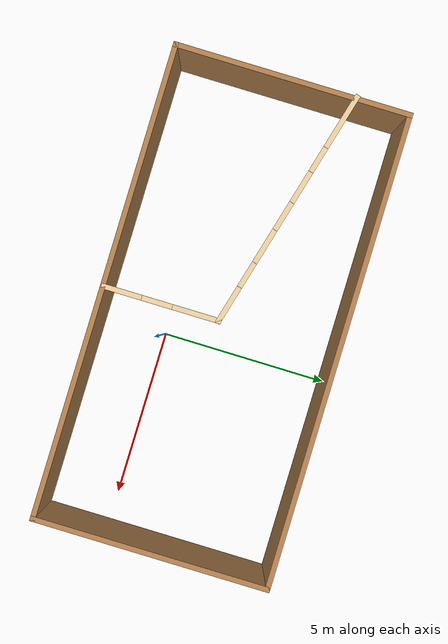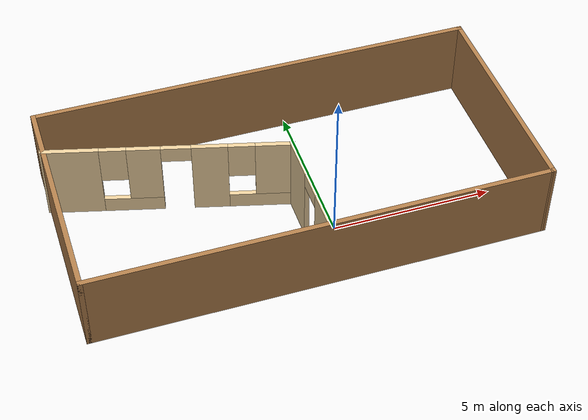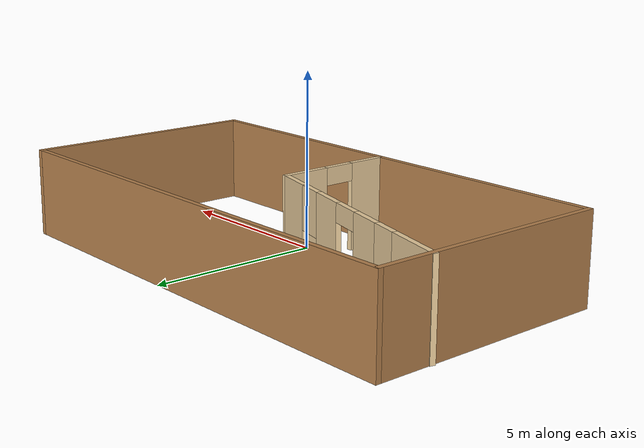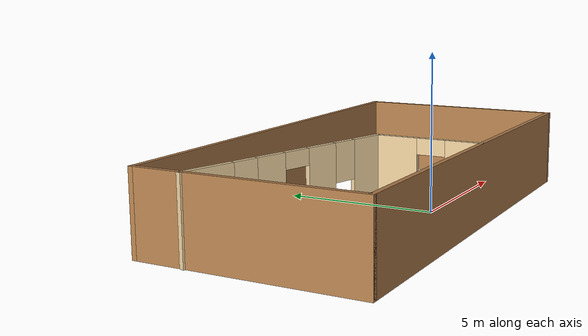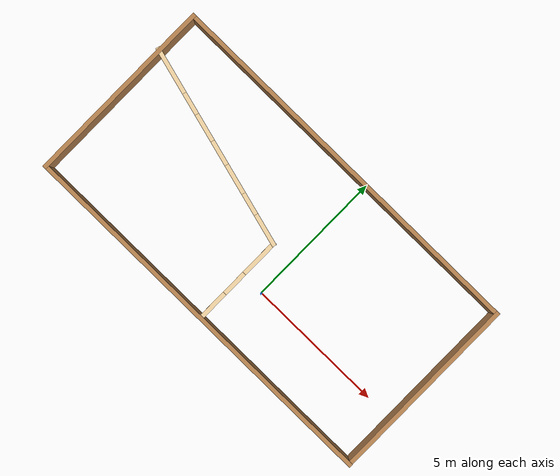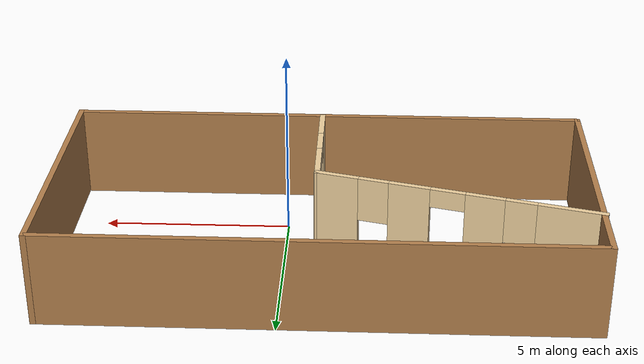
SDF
<?xml version='1.0'?>
<sdf version='1.6'>
  <model name='mybuilding'>
    <pose frame=''>-1.01869 1.48322 0 0 -0 0</pose>
    <link name='Wall_3'>
      <collision name='Wall_3_Collision'>
        <geometry>
          <box>
            <size>7 0.15 2.5</size>
          </box>
        </geometry>
        <pose frame=''>0 0 1.25 0 -0 0</pose>
      </collision>
      <visual name='Wall_3_Visual'>
        <pose frame=''>0 0 1.25 0 -0 0</pose>
        <geometry>
          <box>
            <size>7 0.15 2.5</size>
          </box>
        </geometry>
        <material>
          <script>
            <uri>file://media/materials/scripts/gazebo.material</uri>
            <name>Gazebo/Wood</name>
          </script>
          <ambient>1 1 1 1</ambient>
        </material>
        <meta>
          <layer>0</layer>
        </meta>
      </visual>
      <pose frame=''>-6.89646 0 0 0 -0 -1.5708</pose>
    </link>
    <link name='Wall_4'>
      <collision name='Wall_4_Collision'>
        <geometry>
          <box>
            <size>14 0.15 2.5</size>
          </box>
        </geometry>
        <pose frame=''>0 0 1.25 0 -0 0</pose>
      </collision>
      <visual name='Wall_4_Visual'>
        <pose frame=''>0 0 1.25 0 -0 0</pose>
        <geometry>
          <box>
            <size>14 0.15 2.5</size>
          </box>
        </geometry>
        <material>
          <script>
            <uri>file://media/materials/scripts/gazebo.material</uri>
            <name>Gazebo/Wood</name>
          </script>
          <ambient>1 1 1 1</ambient>
        </material>
        <meta>
          <layer>0</layer>
        </meta>
      </visual>
      <pose frame=''>0.028541 -3.425 0 0 -0 0</pose>
    </link>
    <link name='Wall_5'>
      <collision name='Wall_5_Collision'>
        <geometry>
          <box>
            <size>7 0.15 2.5</size>
          </box>
        </geometry>
        <pose frame=''>0 0 1.25 0 -0 0</pose>
      </collision>
      <visual name='Wall_5_Visual'>
        <pose frame=''>0 0 1.25 0 -0 0</pose>
        <geometry>
          <box>
            <size>7 0.15 2.5</size>
          </box>
        </geometry>
        <material>
          <script>
            <uri>file://media/materials/scripts/gazebo.material</uri>
            <name>Gazebo/Wood</name>
          </script>
          <ambient>1 1 1 1</ambient>
        </material>
        <meta>
          <layer>0</layer>
        </meta>
      </visual>
      <pose frame=''>6.95354 0 0 0 -0 1.5708</pose>
    </link>
    <link name='Wall_6'>
      <collision name='Wall_6_Collision'>
        <geometry>
          <box>
            <size>14 0.15 2.5</size>
          </box>
        </geometry>
        <pose frame=''>0 0 1.25 0 -0 0</pose>
      </collision>
      <visual name='Wall_6_Visual'>
        <pose frame=''>0 0 1.25 0 -0 0</pose>
        <geometry>
          <box>
            <size>14 0.15 2.5</size>
          </box>
        </geometry>
        <material>
          <script>
            <uri>file://media/materials/scripts/gazebo.material</uri>
            <name>Gazebo/Wood</name>
          </script>
          <ambient>1 1 1 1</ambient>
        </material>
        <meta>
          <layer>0</layer>
        </meta>
      </visual>
      <pose frame=''>0.028541 3.425 0 0 -0 3.14159</pose>
    </link>
    <link name='Wall_8'>
      <pose frame=''>-3.38691 0.904981 0 0 -0 -0.261799</pose>
      <visual name='Wall_8_Visual_0'>
        <pose frame=''>-2.88694 0 1.25 0 -0 0</pose>
        <geometry>
          <box>
            <size>1.72612 0.15 2.5</size>
          </box>
        </geometry>
        <material>
          <script>
            <uri>file://media/materials/scripts/gazebo.material</uri>
            <name>Gazebo/Grey</name>
          </script>
          <ambient>0.921569 0.807843 0.615686 1</ambient>
        </material>
        <meta>
          <layer>0</layer>
        </meta>
      </visual>
      <collision name='Wall_8_Collision_0'>
        <geometry>
          <box>
            <size>1.72612 0.15 2.5</size>
          </box>
        </geometry>
        <pose frame=''>-2.88694 0 1.25 0 -0 0</pose>
      </collision>
      <visual name='Wall_8_Visual_1'>
        <pose frame=''>1.22486 0 1.25 0 -0 0</pose>
        <geometry>
          <box>
            <size>1.07897 0.15 2.5</size>
          </box>
        </geometry>
        <material>
          <script>
            <uri>file://media/materials/scripts/gazebo.material</uri>
            <name>Gazebo/Grey</name>
          </script>
          <ambient>0.921569 0.807843 0.615686 1</ambient>
        </material>
        <meta>
          <layer>0</layer>
        </meta>
      </visual>
      <collision name='Wall_8_Collision_1'>
        <geometry>
          <box>
            <size>1.07897 0.15 2.5</size>
          </box>
        </geometry>
        <pose frame=''>1.22486 0 1.25 0 -0 0</pose>
      </collision>
      <visual name='Wall_8_Visual_2'>
        <pose frame=''>-1.11925 0 0.25 0 -0 0</pose>
        <geometry>
          <box>
            <size>1.80926 0.15 0.5</size>
          </box>
        </geometry>
        <material>
          <script>
            <uri>file://media/materials/scripts/gazebo.material</uri>
            <name>Gazebo/Grey</name>
          </script>
          <ambient>0.921569 0.807843 0.615686 1</ambient>
        </material>
        <meta>
          <layer>0</layer>
        </meta>
      </visual>
      <collision name='Wall_8_Collision_2'>
        <geometry>
          <box>
            <size>1.80926 0.15 0.5</size>
          </box>
        </geometry>
        <pose frame=''>-1.11925 0 0.25 0 -0 0</pose>
      </collision>
      <visual name='Wall_8_Visual_3'>
        <pose frame=''>2.75718 0 0.25 0 -0 0</pose>
        <geometry>
          <box>
            <size>1.98565 0.15 0.5</size>
          </box>
        </geometry>
        <material>
          <script>
            <uri>file://media/materials/scripts/gazebo.material</uri>
            <name>Gazebo/Grey</name>
          </script>
          <ambient>0.921569 0.807843 0.615686 1</ambient>
        </material>
        <meta>
          <layer>0</layer>
        </meta>
      </visual>
      <collision name='Wall_8_Collision_3'>
        <geometry>
          <box>
            <size>1.98565 0.15 0.5</size>
          </box>
        </geometry>
        <pose frame=''>2.75718 0 0.25 0 -0 0</pose>
      </collision>
      <visual name='Wall_8_Visual_4'>
        <pose frame=''>-0.71925 0 1.5 0 -0 0</pose>
        <geometry>
          <box>
            <size>1.00926 0.15 2</size>
          </box>
        </geometry>
        <material>
          <script>
            <uri>file://media/materials/scripts/gazebo.material</uri>
            <name>Gazebo/Grey</name>
          </script>
          <ambient>0.921569 0.807843 0.615686 1</ambient>
        </material>
        <meta>
          <layer>0</layer>
        </meta>
      </visual>
      <collision name='Wall_8_Collision_4'>
        <geometry>
          <box>
            <size>1.00926 0.15 2</size>
          </box>
        </geometry>
        <pose frame=''>-0.71925 0 1.5 0 -0 0</pose>
      </collision>
      <visual name='Wall_8_Visual_5'>
        <pose frame=''>-0.71925 0 1.5 0 -0 0</pose>
        <geometry>
          <box>
            <size>1.00926 0.15 2</size>
          </box>
        </geometry>
        <material>
          <script>
            <uri>file://media/materials/scripts/gazebo.material</uri>
            <name>Gazebo/Grey</name>
          </script>
          <ambient>0.921569 0.807843 0.615686 1</ambient>
        </material>
        <meta>
          <layer>0</layer>
        </meta>
      </visual>
      <collision name='Wall_8_Collision_5'>
        <geometry>
          <box>
            <size>1.00926 0.15 2</size>
          </box>
        </geometry>
        <pose frame=''>-0.71925 0 1.5 0 -0 0</pose>
      </collision>
      <visual name='Wall_8_Visual_6'>
        <pose frame=''>3.15718 0 1.5 0 -0 0</pose>
        <geometry>
          <box>
            <size>1.18565 0.15 2</size>
          </box>
        </geometry>
        <material>
          <script>
            <uri>file://media/materials/scripts/gazebo.material</uri>
            <name>Gazebo/Grey</name>
          </script>
          <ambient>0.921569 0.807843 0.615686 1</ambient>
        </material>
        <meta>
          <layer>0</layer>
        </meta>
      </visual>
      <collision name='Wall_8_Collision_6'>
        <geometry>
          <box>
            <size>1.18565 0.15 2</size>
          </box>
        </geometry>
        <pose frame=''>3.15718 0 1.5 0 -0 0</pose>
      </collision>
      <visual name='Wall_8_Visual_7'>
        <pose frame=''>-1.62388 0 1.9 0 -0 0</pose>
        <geometry>
          <box>
            <size>0.8 0.15 1.2</size>
          </box>
        </geometry>
        <material>
          <script>
            <uri>file://media/materials/scripts/gazebo.material</uri>
            <name>Gazebo/Grey</name>
          </script>
          <ambient>0.921569 0.807843 0.615686 1</ambient>
        </material>
        <meta>
          <layer>0</layer>
        </meta>
      </visual>
      <collision name='Wall_8_Collision_7'>
        <geometry>
          <box>
            <size>0.8 0.15 1.2</size>
          </box>
        </geometry>
        <pose frame=''>-1.62388 0 1.9 0 -0 0</pose>
      </collision>
      <visual name='Wall_8_Visual_8'>
        <pose frame=''>2.16435 0 1.9 0 -0 0</pose>
        <geometry>
          <box>
            <size>0.8 0.15 1.2</size>
          </box>
        </geometry>
        <material>
          <script>
            <uri>file://media/materials/scripts/gazebo.material</uri>
            <name>Gazebo/Grey</name>
          </script>
          <ambient>0.921569 0.807843 0.615686 1</ambient>
        </material>
        <meta>
          <layer>0</layer>
        </meta>
      </visual>
      <collision name='Wall_8_Collision_8'>
        <geometry>
          <box>
            <size>0.8 0.15 1.2</size>
          </box>
        </geometry>
        <pose frame=''>2.16435 0 1.9 0 -0 0</pose>
      </collision>
      <visual name='Wall_8_Visual_9'>
        <pose frame=''>0.235378 0 2.25 0 -0 0</pose>
        <geometry>
          <box>
            <size>0.9 0.15 0.5</size>
          </box>
        </geometry>
        <material>
          <script>
            <uri>file://media/materials/scripts/gazebo.material</uri>
            <name>Gazebo/Grey</name>
          </script>
          <ambient>0.921569 0.807843 0.615686 1</ambient>
        </material>
        <meta>
          <layer>0</layer>
        </meta>
      </visual>
      <collision name='Wall_8_Collision_9'>
        <geometry>
          <box>
            <size>0.9 0.15 0.5</size>
          </box>
        </geometry>
        <pose frame=''>0.235378 0 2.25 0 -0 0</pose>
      </collision>
      <visual name='Wall_8_Visual_10'>
        <pose frame=''>0.235378 0 2.25 0 -0 0</pose>
        <geometry>
          <box>
            <size>0.9 0.15 0.5</size>
          </box>
        </geometry>
        <material>
          <script>
            <uri>file://media/materials/scripts/gazebo.material</uri>
            <name>Gazebo/Grey</name>
          </script>
          <ambient>0.921569 0.807843 0.615686 1</ambient>
        </material>
        <meta>
          <layer>0</layer>
        </meta>
      </visual>
      <collision name='Wall_8_Collision_10'>
        <geometry>
          <box>
            <size>0.9 0.15 0.5</size>
          </box>
        </geometry>
        <pose frame=''>0.235378 0 2.25 0 -0 0</pose>
      </collision>
    </link>
    <link name='Wall_9'>
      <pose frame=''>0.162868 -1.72118 0 0 -0 -1.5708</pose>
      <visual name='Wall_9_Visual_0'>
        <pose frame=''>-1.03821 0 1.25 0 -0 0</pose>
        <geometry>
          <box>
            <size>1.42358 0.15 2.5</size>
          </box>
        </geometry>
        <material>
          <script>
            <uri>file://media/materials/scripts/gazebo.material</uri>
            <name>Gazebo/Grey</name>
          </script>
          <ambient>0.921569 0.807843 0.615686 1</ambient>
        </material>
        <meta>
          <layer>0</layer>
        </meta>
      </visual>
      <collision name='Wall_9_Collision_0'>
        <geometry>
          <box>
            <size>1.42358 0.15 2.5</size>
          </box>
        </geometry>
        <pose frame=''>-1.03821 0 1.25 0 -0 0</pose>
      </collision>
      <visual name='Wall_9_Visual_1'>
        <pose frame=''>1.16179 0 1.25 0 -0 0</pose>
        <geometry>
          <box>
            <size>1.17642 0.15 2.5</size>
          </box>
        </geometry>
        <material>
          <script>
            <uri>file://media/materials/scripts/gazebo.material</uri>
            <name>Gazebo/Grey</name>
          </script>
          <ambient>0.921569 0.807843 0.615686 1</ambient>
        </material>
        <meta>
          <layer>0</layer>
        </meta>
      </visual>
      <collision name='Wall_9_Collision_1'>
        <geometry>
          <box>
            <size>1.17642 0.15 2.5</size>
          </box>
        </geometry>
        <pose frame=''>1.16179 0 1.25 0 -0 0</pose>
      </collision>
      <visual name='Wall_9_Visual_2'>
        <pose frame=''>0.123577 0 2.25 0 -0 0</pose>
        <geometry>
          <box>
            <size>0.9 0.15 0.5</size>
          </box>
        </geometry>
        <material>
          <script>
            <uri>file://media/materials/scripts/gazebo.material</uri>
            <name>Gazebo/Grey</name>
          </script>
          <ambient>0.921569 0.807843 0.615686 1</ambient>
        </material>
        <meta>
          <layer>0</layer>
        </meta>
      </visual>
      <collision name='Wall_9_Collision_2'>
        <geometry>
          <box>
            <size>0.9 0.15 0.5</size>
          </box>
        </geometry>
        <pose frame=''>0.123577 0 2.25 0 -0 0</pose>
      </collision>
    </link>
    <static>1</static>
  </model>
</sdf>
